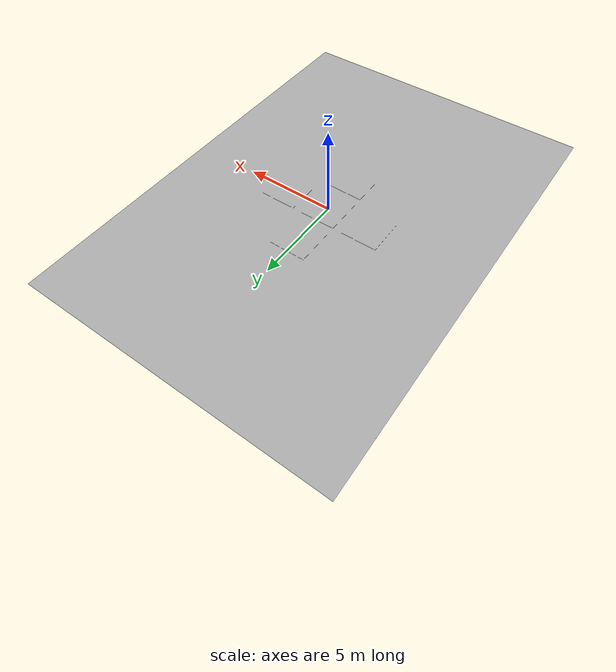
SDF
<?xml version="1.0" ?>
<sdf version="1.5">
  <model name="Navy">
    <pose>0 0 0.002  0 0 0</pose>
    <static>true</static>
    <link name="link">
      <gravity>0</gravity>
<inertial>
    <mass>150000</mass>
</inertial>
      <collision name="collision">
        <geometry>
          <box>
            <size>12 8.62 0.50</size>
          </box>
        </geometry>
      <surface>
          <contact>
            <ode>
              <min_depth>0.001</min_depth>
            </ode>
          </contact>
        <friction>
          <ode>
            <mu>1000000</mu>
            <mu2>1000000</mu2>
                <slip1>0.01</slip1>
                <slip2>0.01</slip2>
          </ode>
        </friction>
      </surface>
      </collision>
      <visual name="visual">
        <cast_shadows>false</cast_shadows>
        <geometry>
          <mesh>
            <uri>model://navy/meshes/ship_deck_better.dae</uri>
          </mesh>
	       </geometry>
      </visual>
    </link>
  </model>
</sdf>
